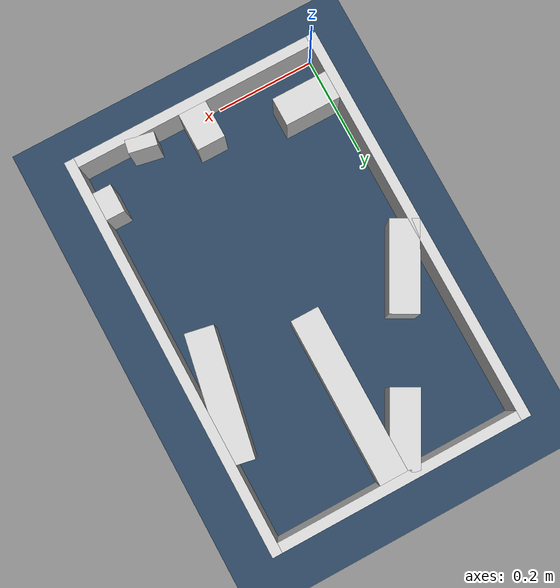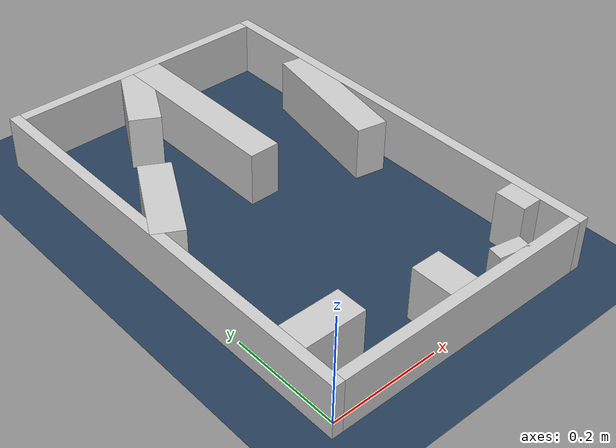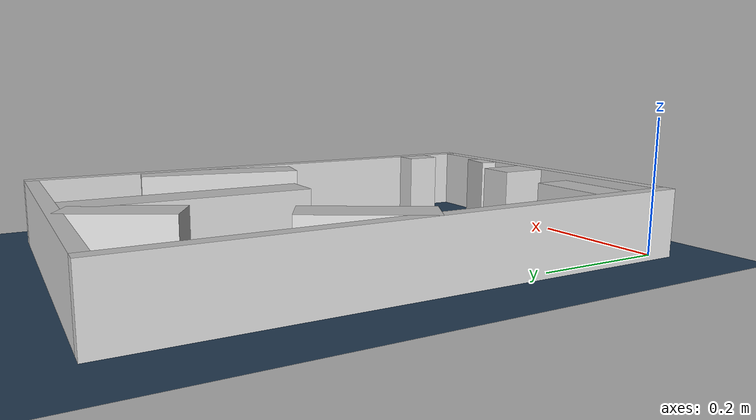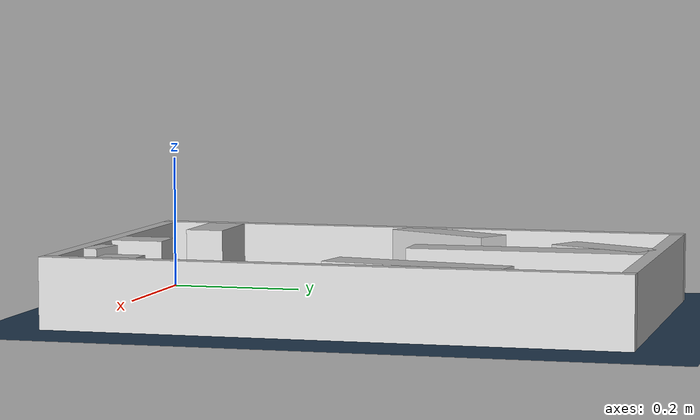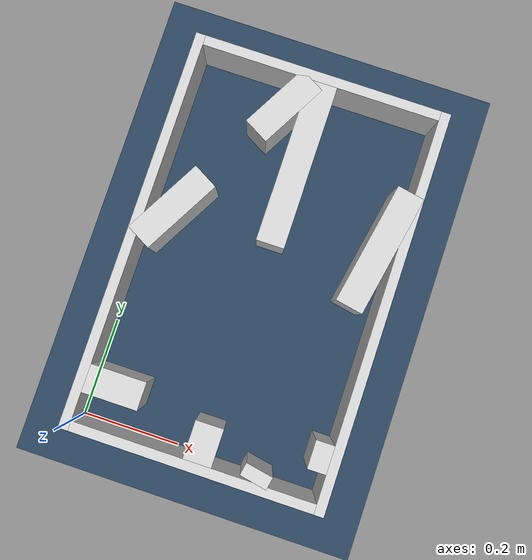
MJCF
<?xml version="1.0" ?>
<mujoco model="generated_real_template">
  <compiler angle="degree"/>
  <option timestep="0.002" integrator="implicitfast" iterations="100" cone="elliptic"/>
  <default>
    <geom density="1"/>
  </default>
  <asset>
    <texture builtin="gradient" height="3072" rgb1="0.3 0.5 0.7" rgb2="0 0 0" type="skybox" width="512"/>
    <texture builtin="checker" height="300" mark="edge" markrgb="0.8 0.8 0.8" name="groundplane" rgb1="0.2 0.3 0.4" rgb2="0.1 0.2 0.3" type="2d" width="300"/>
    <material name="groundplane" reflectance="0.2" texrepeat="5 5" texture="groundplane" texuniform="true"/>
  </asset>
  <worldbody>
    <light dir="0 0 -1" directional="true" pos="0 0 1.5"/>
    <geom name="floor" type="plane" condim="4" friction="0.5 0.005 0.001" material="groundplane" size="0 0 0.05"/>
    <body name="walls">
      <geom name="wall_boundary_left" type="box" condim="4" friction="1.0 0.005 0.0001" rgba="0.8 0.8 0.8 1" pos="-0.010000 0.387500 0.050000" euler="0 0 0.000000" size="0.010000 0.407500 0.050000"/>
      <geom name="wall_boundary_right" type="box" condim="4" friction="1.0 0.005 0.0001" rgba="0.8 0.8 0.8 1" pos="0.500000 0.387500 0.050000" euler="0 0 0.000000" size="0.010000 0.407500 0.050000"/>
      <geom name="wall_boundary_bottom" type="box" condim="4" friction="1.0 0.005 0.0001" rgba="0.8 0.8 0.8 1" pos="0.245000 -0.010000 0.050000" euler="0 0 0.000000" size="0.245000 0.010000 0.050000"/>
      <geom name="wall_boundary_top" type="box" condim="4" friction="1.0 0.005 0.0001" rgba="0.8 0.8 0.8 1" pos="0.245000 0.785000 0.050000" euler="0 0 0.000000" size="0.245000 0.010000 0.050000"/>
      <geom name="wall_inner_1_1" type="box" condim="4" friction="1.0 0.005 0.0001" rgba="0.8 0.8 0.8 1" pos="0.192079 0.708680 0.050000" euler="0 0 -119.010537" size="0.075835 0.028500 0.050000"/>
      <geom name="wall_inner_1_2" type="box" condim="4" friction="1.0 0.005 0.0001" rgba="0.8 0.8 0.8 1" pos="0.047897 0.448682 0.050000" euler="0 0 -119.010537" size="0.088607 0.028500 0.050000"/>
      <geom name="wall_inner_2_1" type="box" condim="4" friction="1.0 0.005 0.0001" rgba="0.8 0.8 0.8 1" pos="0.252067 0.038203 0.050000" euler="0 0 90.000000" size="0.038203 0.028500 0.050000"/>
      <geom name="wall_inner_2_2" type="box" condim="4" friction="1.0 0.005 0.0001" rgba="0.8 0.8 0.8 1" pos="0.252067 0.606828 0.050000" euler="0 0 90.000000" size="0.168172 0.028500 0.050000"/>
      <geom name="wall_inner_3_1" type="box" condim="4" friction="1.0 0.005 0.0001" rgba="0.8 0.8 0.8 1" pos="0.366097 0.013032 0.050000" euler="0 0 79.214779" size="0.013266 0.028500 0.050000"/>
      <geom name="wall_inner_3_2" type="box" condim="4" friction="1.0 0.005 0.0001" rgba="0.8 0.8 0.8 1" pos="0.458190 0.496477 0.050000" euler="0 0 79.214779" size="0.127251 0.028500 0.050000"/>
      <geom name="wall_inner_4_1" type="box" condim="4" friction="1.0 0.005 0.0001" rgba="0.8 0.8 0.8 1" pos="0.056230 0.084835 0.050000" euler="0 0 0.000000" size="0.056230 0.028500 0.050000"/>
      <geom name="wall_inner_4_2" type="box" condim="4" friction="1.0 0.005 0.0001" rgba="0.8 0.8 0.8 1" pos="0.471116 0.084835 0.050000" euler="0 0 0.000000" size="0.018884 0.028500 0.050000"/>
    </body>
  </worldbody>
</mujoco>
